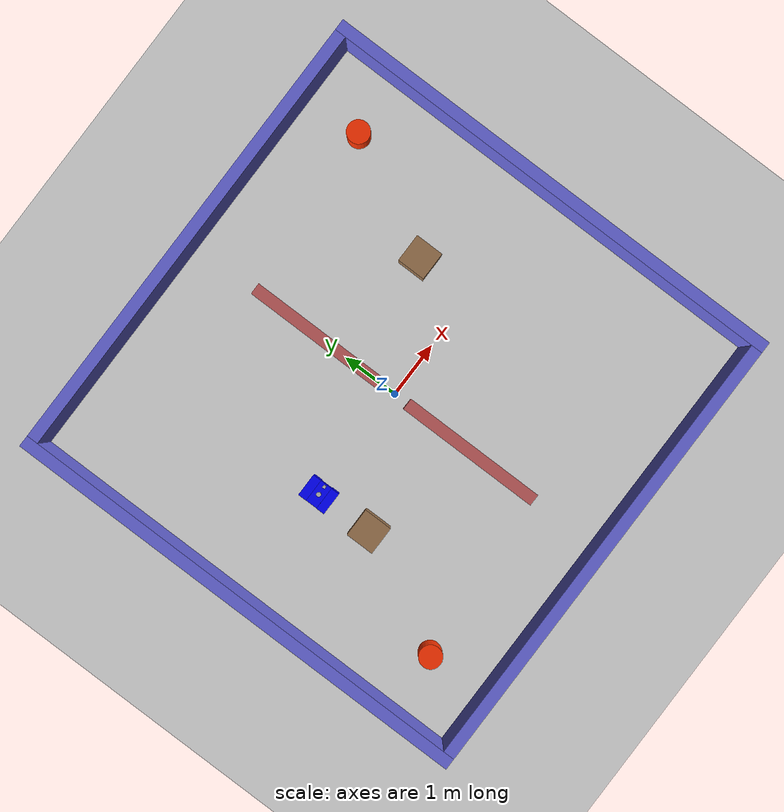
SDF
<?xml version="1.0"?>
<sdf version="1.8">

  <world name="fire_world">

    <!-- ====================== PHYSICS ====================== -->
    <physics name="default_physics" type="ode">
      <max_step_size>0.001</max_step_size>
      <real_time_factor>1.0</real_time_factor>
      <real_time_update_rate>1000</real_time_update_rate>
      <gravity>0 0 -9.81</gravity>
    </physics>

    <!-- ====================== SCENE ====================== -->
    <scene>
      <ambient>0.6 0.6 0.7 1</ambient>
      <background>0.8 0.8 0.9 1</background>
      <shadows>true</shadows>
      <grid>false</grid>
    </scene>

    <!-- ====================== LIGHTING ====================== -->
    <light type="directional" name="sun">
      <cast_shadows>true</cast_shadows>
      <pose>0 0 10 0 0 0</pose>
      <diffuse>0.9 0.9 0.8 1</diffuse>
      <specular>0.6 0.6 0.5 1</specular>
      <direction>-0.4 -0.4 -1</direction>
    </light>

    <!-- ====================== GROUND ====================== -->
    <model name="ground">
      <static>true</static>
      <link name="link">
        <collision name="collision">
          <geometry>
            <plane>
              <normal>0 0 1</normal>
              <size>20 20</size>
            </plane>
          </geometry>
        </collision>
        <visual name="visual">
          <geometry>
            <plane>
              <normal>0 0 1</normal>
              <size>20 20</size>
            </plane>
          </geometry>
          <material>
            <ambient>0.7 0.7 0.7 1</ambient>
            <diffuse>0.85 0.85 0.85 1</diffuse>
          </material>
        </visual>
      </link>
    </model>

    <!-- ====================== FIREBOT ROBOT ====================== -->
    <include>
      <uri>model://firebot</uri>
      <pose>-2 0 0.5 0 0 0</pose>
      <name>firebot</name>
    </include>

    <!-- ====================== ARENA WALLS ====================== -->
    <model name="arena_walls">

      <!-- LEFT WALL -->
      <model name="wall_left">
        <static>true</static>
        <pose>-4.1 0 0.5 0 0 0</pose>
        <link name="link">
          <collision name="collision">
            <geometry><box><size>0.2 8.4 1.0</size></box></geometry>
          </collision>
          <visual name="visual">
            <geometry><box><size>0.2 8.4 1.0</size></box></geometry>
            <material>
              <ambient>0.3 0.3 0.7 1</ambient>
              <diffuse>0.4 0.4 0.85 1</diffuse>
            </material>
          </visual>
        </link>
      </model>

      <!-- RIGHT WALL -->
      <model name="wall_right">
        <static>true</static>
        <pose>4.1 0 0.5 0 0 0</pose>
        <link name="link">
          <collision name="collision">
            <geometry><box><size>0.2 8.4 1.0</size></box></geometry>
          </collision>
          <visual name="visual">
            <geometry><box><size>0.2 8.4 1.0</size></box></geometry>
            <material>
              <ambient>0.3 0.3 0.7 1</ambient>
              <diffuse>0.4 0.4 0.85 1</diffuse>
            </material>
          </visual>
        </link>
      </model>

      <!-- TOP WALL -->
      <model name="wall_top">
        <static>true</static>
        <pose>0 4.1 0.5 0 0 0</pose>
        <link name="link">
          <collision name="collision">
            <geometry><box><size>8.4 0.2 1.0</size></box></geometry>
          </collision>
          <visual name="visual">
            <geometry><box><size>8.4 0.2 1.0</size></box></geometry>
            <material>
              <ambient>0.3 0.3 0.7 1</ambient>
              <diffuse>0.4 0.4 0.85 1</diffuse>
            </material>
          </visual>
        </link>
      </model>

      <!-- BOTTOM WALL -->
      <model name="wall_bottom">
        <static>true</static>
        <pose>0 -4.1 0.5 0 0 0</pose>
        <link name="link">
          <collision name="collision">
            <geometry><box><size>8.4 0.2 1.0</size></box></geometry>
          </collision>
          <visual name="visual">
            <geometry><box><size>8.4 0.2 1.0</size></box></geometry>
            <material>
              <ambient>0.3 0.3 0.7 1</ambient>
              <diffuse>0.4 0.4 0.85 1</diffuse>
            </material>
          </visual>
        </link>
      </model>

    </model>

    <!-- ====================== ROOM DIVIDERS (with Central Doorway) ====================== -->

    <!-- DIVIDER TOP -->
    <model name="divider_top">
      <static>true</static>
      <pose>0 1.5 0.5 0 0 0</pose>
      <link name="link">
        <collision name="collision">
          <geometry><box><size>0.2 2.5 1.0</size></box></geometry>
        </collision>
        <visual name="visual">
          <geometry><box><size>0.2 2.5 1.0</size></box></geometry>
          <material>
            <ambient>0.45 0.25 0.25 1</ambient>
            <diffuse>0.75 0.35 0.35 1</diffuse>
          </material>
        </visual>
      </link>
    </model>

    <!-- DIVIDER BOTTOM -->
    <model name="divider_bottom">
      <static>true</static>
      <pose>0 -1.5 0.5 0 0 0</pose>
      <link name="link">
        <collision name="collision">
          <geometry><box><size>0.2 2.5 1.0</size></box></geometry>
        </collision>
        <visual name="visual">
          <geometry><box><size>0.2 2.5 1.0</size></box></geometry>
          <material>
            <ambient>0.45 0.25 0.25 1</ambient>
            <diffuse>0.75 0.35 0.35 1</diffuse>
          </material>
        </visual>
      </link>
    </model>

    <!-- ====================== OBSTACLES ====================== -->

    <!-- OBSTACLE 1 -->
    <model name="obstacle_1">
      <static>true</static>
      <link name="link">
        <pose>2 1 0.25 0 0 0</pose>
        <collision name="collision">
          <geometry>
            <box><size>0.5 0.5 0.5</size></box>
          </geometry>
        </collision>
        <visual name="visual">
          <geometry>
            <box><size>0.5 0.5 0.5</size></box>
          </geometry>
          <material>
            <ambient>0.4 0.3 0.2 1</ambient>
            <diffuse>0.6 0.45 0.3 1</diffuse>
          </material>
        </visual>
      </link>
    </model>

    <!-- OBSTACLE 2 -->
    <model name="obstacle_2">
      <static>true</static>
      <link name="link">
        <pose>-2 -1 0.25 0 0 0</pose>
        <collision name="collision">
          <geometry>
            <box><size>0.5 0.5 0.5</size></box>
          </geometry>
        </collision>
        <visual name="visual">
          <geometry>
            <box><size>0.5 0.5 0.5</size></box>
          </geometry>
          <material>
            <ambient>0.4 0.3 0.2 1</ambient>
            <diffuse>0.6 0.45 0.3 1</diffuse>
          </material>
        </visual>
      </link>
    </model>

    <!-- ====================== FIRES ====================== -->

    <!-- FIRE 1 -->
    <model name="fire_1">
      <static>true</static>
      <link name="link">
        <pose>3 3 0.25 0 0 0</pose>
        <visual name="visual">
          <geometry>
            <cylinder>
              <radius>0.2</radius>
              <length>0.5</length>
            </cylinder>
          </geometry>
          <material>
            <ambient>1 0.3 0 1</ambient>
            <diffuse>1 0.2 0 1</diffuse>
          </material>
        </visual>
      </link>
    </model>

    <!-- FIRE 2 -->
    <model name="fire_2">
      <static>true</static>
      <link name="link">
        <pose>-3 -3 0.25 0 0 0</pose>
        <visual name="visual">
          <geometry>
            <cylinder>
              <radius>0.2</radius>
              <length>0.5</length>
            </cylinder>
          </geometry>
          <material>
            <ambient>1 0.3 0 1</ambient>
            <diffuse>1 0.2 0 1</diffuse>
          </material>
        </visual>
      </link>
    </model>

  </world>
</sdf>

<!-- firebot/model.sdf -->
<sdf version="1.8">
  <model name="firebot">

    <link name="base_link">

      <visual name="visual">
  <geometry>
    <box>
      <size>0.4 0.3 0.15</size>
    </box>
  </geometry>

  <material>
    <ambient>0 0 1 1</ambient>
    <diffuse>0 0 1 1</diffuse>
  </material>
</visual>

      <collision name="collision">
        <geometry>
          <box>
            <size>0.4 0.3 0.15</size>
          </box>
        </geometry>
      </collision>
<inertial>
  <mass>5.0</mass>

  <inertia>
    <ixx>0.1</ixx>
    <iyy>0.1</iyy>
    <izz>0.1</izz>
    <ixy>0.0</ixy>
    <ixz>0.0</ixz>
    <iyz>0.0</iyz>
  </inertia>
</inertial>

    </link>
<link name="left_wheel">
  <pose>0 0.18 -0.05 1.5708 0 0</pose>

  <visual name="visual">
  <geometry>
    <box>
      <size>0.4 0.3 0.15</size>
    </box>
  </geometry>

  <material>
    <ambient>0 0 1 1</ambient>
    <diffuse>0 0 1 1</diffuse>
  </material>
</visual>

  <collision name="collision">
    <geometry>
      <cylinder>
        <radius>0.05</radius>
        <length>0.03</length>
      </cylinder>
    </geometry>
  </collision>
<inertial>
  <mass>0.5</mass>

  <inertia>
    <ixx>0.001</ixx>
    <iyy>0.001</iyy>
    <izz>0.001</izz>
    <ixy>0.0</ixy>
    <ixz>0.0</ixz>
    <iyz>0.0</iyz>
  </inertia>
</inertial>
</link>
<joint name="left_wheel_joint" type="revolute">
  <parent>base_link</parent>
  <child>left_wheel</child>

    <axis>
  <xyz>0 1 0</xyz>

  <limit>
    <effort>10</effort>
    <velocity>20</velocity>
  </limit>
</axis>
</joint>
<link name="right_wheel">
  <pose>0 -0.18 -0.05 1.5708 0 0</pose>

  <visual name="visual">
  <geometry>
    <box>
      <size>0.4 0.3 0.15</size>
    </box>
  </geometry>

  <material>
    <ambient>0 0 1 1</ambient>
    <diffuse>0 0 1 1</diffuse>
  </material>
</visual>

  <collision name="collision">
    <geometry>
      <cylinder>
        <radius>0.05</radius>
        <length>0.03</length>
      </cylinder>
    </geometry>
  </collision>
<inertial>
  <mass>0.5</mass>

  <inertia>
    <ixx>0.001</ixx>
    <iyy>0.001</iyy>
    <izz>0.001</izz>
    <ixy>0.0</ixy>
    <ixz>0.0</ixz>
    <iyz>0.0</iyz>
  </inertia>
</inertial>
</link>
<joint name="right_wheel_joint" type="revolute">
  <parent>base_link</parent>
  <child>right_wheel</child>
    <axis>
  <xyz>0 1 0</xyz>

  <limit>
    <effort>10</effort>
    <velocity>20</velocity>
  </limit>
</axis>
</joint>
<link name="caster_wheel">
  <pose>0.15 0 -0.08 0 0 0</pose>

  <visual name="visual">
    <geometry>
      <sphere>
        <radius>0.03</radius>
      </sphere>
    </geometry>
  </visual>

  <collision name="collision">
    <geometry>
      <sphere>
        <radius>0.03</radius>
      </sphere>
    </geometry>
  </collision>
</link>
<joint name="caster_wheel_joint" type="fixed">
  <parent>base_link</parent>
  <child>caster_wheel</child>
</joint>
<link name="lidar_link">
<sensor name="lidar_sensor" type="gpu_lidar">
  <update_rate>10</update_rate>

  <topic>scan</topic>

  <lidar>
    <scan>
      <horizontal>
        <samples>360</samples>
        <resolution>1</resolution>
        <min_angle>-3.14159</min_angle>
        <max_angle>3.14159</max_angle>
      </horizontal>
    </scan>

    <range>
      <min>0.1</min>
      <max>10.0</max>
      <resolution>0.01</resolution>
    </range>
  </lidar>

  <always_on>true</always_on>
  <visualize>true</visualize>
</sensor>
  <pose>0 0 0.12 0 0 0</pose>

  <visual name="visual">
    <geometry>
      <cylinder>
        <radius>0.04</radius>
        <length>0.05</length>
      </cylinder>
    </geometry>
  </visual>

  <collision name="collision">
    <geometry>
      <cylinder>
        <radius>0.04</radius>
        <length>0.05</length>
      </cylinder>
    </geometry>
  </collision>
<inertial>
  <mass>0.1</mass>

  <inertia>
    <ixx>0.0001</ixx>
    <iyy>0.0001</iyy>
    <izz>0.0001</izz>
    <ixy>0.0</ixy>
    <ixz>0.0</ixz>
    <iyz>0.0</iyz>
  </inertia>
</inertial>
</link>
<joint name="lidar_joint" type="fixed">
  <parent>base_link</parent>
  <child>lidar_link</child>
</joint>
<link name="camera_link">
  <pose>0.15 0 0.10 0 0 0</pose>

  <visual name="visual">
    <geometry>
      <box>
        <size>0.05 0.05 0.05</size>
      </box>
    </geometry>
  </visual>

  <collision name="collision">
    <geometry>
      <box>
        <size>0.05 0.05 0.05</size>
      </box>
    </geometry>
  </collision>
</link>
<joint name="camera_joint" type="fixed">
  <parent>base_link</parent>
  <child>camera_link</child>
</joint>
<plugin
    filename="gz-sim-diff-drive-system"
    name="gz::sim::systems::DiffDrive">

  <left_joint>left_wheel_joint</left_joint>
  <right_joint>right_wheel_joint</right_joint>

  <wheel_separation>0.36</wheel_separation>
  <wheel_radius>0.05</wheel_radius>

  <topic>cmd_vel</topic>

</plugin>
  </model>
</sdf>
